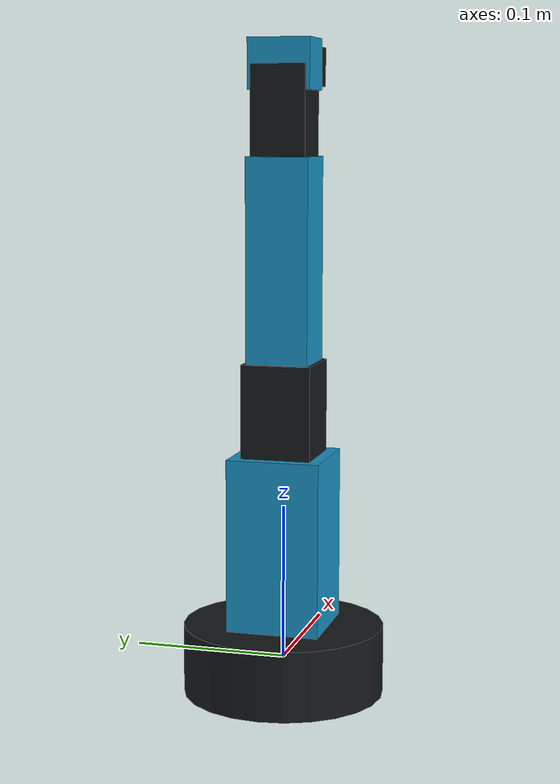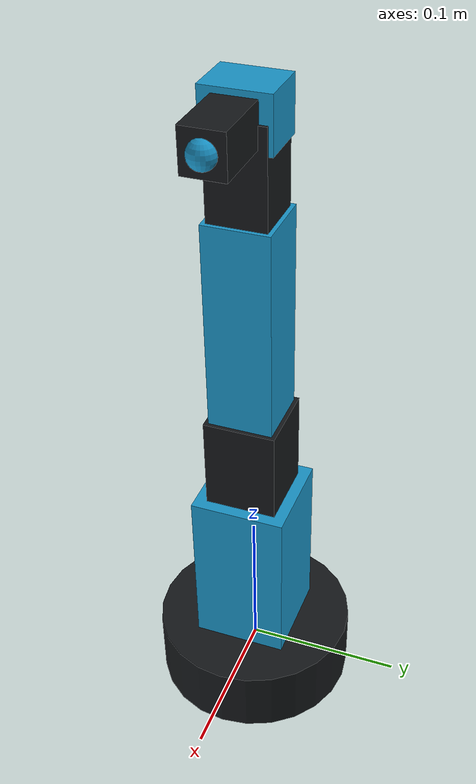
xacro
<?xml version="1.0"?>
<robot xmlns:xacro="http://www.ros.org/wiki/xacro" name="jonny5">
  <!-- ros2_control block (off by default: the SPI driver node path does not use it). -->
  <xacro:arg name="ros2_control" default="false" />
  <xacro:arg name="mock_hardware" default="true" />
  <xacro:arg name="spi_device" default="/dev/spidev0.0" />
  <xacro:arg name="transfer_len" default="64" />

  <xacro:property name="base_height" value="0.1123" />
  <xacro:property name="upper_arm" value="0.060" />
  <xacro:property name="elbow_to_pitch" value="0.186925" />
  <xacro:property name="yaw_to_pitch" value="0.057" />
  <xacro:property name="forearm" value="${elbow_to_pitch - yaw_to_pitch}" />
  <xacro:property name="tool_x" value="0.057" />

  <material name="jonny5_dark"><color rgba="0.08 0.09 0.10 1.0" /></material>
  <material name="jonny5_signal"><color rgba="0.10 0.58 0.78 1.0" /></material>

  <link name="world" />
  <joint name="world_to_base" type="fixed">
    <parent link="world" />
    <child link="base_link" />
    <origin xyz="0 0 0" rpy="0 0 0" />
  </joint>

  <link name="base_link">
    <visual><geometry><cylinder radius="0.065" length="0.045" /></geometry><material name="jonny5_dark" /></visual>
    <collision><geometry><cylinder radius="0.065" length="0.045" /></geometry></collision>
    <inertial><mass value="0.6" /><origin xyz="0 0 0.022" /><inertia ixx="0.001" ixy="0" ixz="0" iyy="0.001" iyz="0" izz="0.001" /></inertial>
  </link>

  <link name="shoulder_link">
    <visual><origin xyz="0 0 ${base_height/2}" /><geometry><box size="0.060 0.060 ${base_height}" /></geometry><material name="jonny5_signal" /></visual>
    <collision><origin xyz="0 0 ${base_height/2}" /><geometry><box size="0.060 0.060 ${base_height}" /></geometry></collision>
    <inertial><mass value="0.4" /><origin xyz="0 0 ${base_height/2}" /><inertia ixx="0.001" ixy="0" ixz="0" iyy="0.001" iyz="0" izz="0.001" /></inertial>
  </link>

  <joint name="base_joint" type="revolute">
    <parent link="base_link" />
    <child link="shoulder_link" />
    <origin xyz="0 0 0.022" rpy="0 0 0" />
    <axis xyz="0 0 1" />
    <limit lower="-0.785398" upper="0.610865" effort="5.0" velocity="2.0" />
  </joint>

  <link name="upper_arm_link">
    <visual><origin xyz="0 0 ${upper_arm/2}" /><geometry><box size="0.045 0.045 ${upper_arm}" /></geometry><material name="jonny5_dark" /></visual>
    <collision><origin xyz="0 0 ${upper_arm/2}" /><geometry><box size="0.045 0.045 ${upper_arm}" /></geometry></collision>
    <inertial><mass value="0.35" /><origin xyz="0 0 ${upper_arm/2}" /><inertia ixx="0.001" ixy="0" ixz="0" iyy="0.001" iyz="0" izz="0.001" /></inertial>
  </link>

  <joint name="shoulder_joint" type="revolute">
    <parent link="shoulder_link" />
    <child link="upper_arm_link" />
    <origin xyz="0 0 ${base_height}" rpy="0 0 0" />
    <axis xyz="0 1 0" />
    <!-- Dashboard 30..145 phys -> -57..+58 deg. -->
    <limit lower="-0.994838" upper="0.959931" effort="5.0" velocity="1.5" />
  </joint>

  <link name="forearm_link">
    <visual><origin xyz="0 0 ${forearm/2}" /><geometry><box size="0.040 0.040 ${forearm}" /></geometry><material name="jonny5_signal" /></visual>
    <collision><origin xyz="0 0 ${forearm/2}" /><geometry><box size="0.040 0.040 ${forearm}" /></geometry></collision>
    <inertial><mass value="0.3" /><origin xyz="0 0 ${forearm/2}" /><inertia ixx="0.001" ixy="0" ixz="0" iyy="0.001" iyz="0" izz="0.001" /></inertial>
  </link>

  <joint name="elbow_joint" type="revolute">
    <parent link="upper_arm_link" />
    <child link="forearm_link" />
    <origin xyz="0 0 ${upper_arm}" rpy="0 0 0" />
    <axis xyz="0 1 0" />
    <!-- Dashboard 30..145 phys -> -63..+52 deg. -->
    <limit lower="-1.047198" upper="0.907571" effort="5.0" velocity="1.5" />
  </joint>

  <link name="wrist_yaw_link"><visual><origin xyz="0 0 ${yaw_to_pitch/2}" /><geometry><box size="0.035 0.035 ${yaw_to_pitch}" /></geometry><material name="jonny5_dark" /></visual></link>
  <joint name="wrist_yaw_joint" type="revolute">
    <parent link="forearm_link" />
    <child link="wrist_yaw_link" />
    <origin xyz="0 0 ${forearm}" rpy="0 0 0" />
    <axis xyz="0 0 1" />
    <!-- Dashboard 45..135 phys -> -50..+40 deg. -->
    <limit lower="-0.785398" upper="0.698132" effort="2.0" velocity="1.5" />
  </joint>

  <link name="wrist_pitch_link"><visual><geometry><box size="0.032 0.040 0.032" /></geometry><material name="jonny5_signal" /></visual></link>
  <joint name="wrist_pitch_joint" type="revolute">
    <parent link="wrist_yaw_link" />
    <child link="wrist_pitch_link" />
    <origin xyz="0 0 ${yaw_to_pitch}" rpy="0 0 0" />
    <axis xyz="0 1 0" />
    <!-- Dashboard 35..120 phys (offset 90, dir -1) -> -30..+55 deg; firmware default
         45..135 -> -45..+45. Intersection: -30..+45 (PARK uses +40, tip down). -->
    <limit lower="-0.523599" upper="0.785398" effort="2.0" velocity="1.5" />
  </joint>

  <link name="wrist_roll_link"><visual><origin xyz="${tool_x/2} 0 0" /><geometry><box size="${tool_x} 0.025 0.025" /></geometry><material name="jonny5_dark" /></visual></link>
  <joint name="wrist_roll_joint" type="revolute">
    <parent link="wrist_pitch_link" />
    <child link="wrist_roll_link" />
    <!-- Roll axis (x) passes through the pitch point: no offset. -->
    <origin xyz="0 0 0" rpy="0 0 0" />
    <axis xyz="1 0 0" />
    <!-- Dashboard and firmware 45..135 phys (offset 95) -> -50..+40 deg. -->
    <limit lower="-0.785398" upper="0.698132" effort="2.0" velocity="1.5" />
  </joint>

  <link name="ee_link"><visual><geometry><sphere radius="0.008" /></geometry><material name="jonny5_signal" /></visual></link>
  <joint name="tool_joint" type="fixed">
    <parent link="wrist_roll_link" />
    <child link="ee_link" />
    <origin xyz="${tool_x} 0 0" rpy="0 0 0" />
  </joint>

  <link name="imu_link" />
  <joint name="imu_joint" type="fixed">
    <parent link="ee_link" />
    <child link="imu_link" />
    <origin xyz="0.030 0 0.020" rpy="0 0 0" />
  </joint>

  <link name="left_camera_link" />
  <joint name="left_camera_joint" type="fixed">
    <parent link="ee_link" />
    <child link="left_camera_link" />
    <origin xyz="0.045 0.032 0" rpy="0 0 0" />
  </joint>

  <link name="right_camera_link" />
  <joint name="right_camera_joint" type="fixed">
    <parent link="ee_link" />
    <child link="right_camera_link" />
    <origin xyz="0.045 -0.032 0" rpy="0 0 0" />
  </joint>

  <xacro:if value="$(arg ros2_control)">
    <xacro:include filename="jonny5.ros2_control.xacro" />
    <xacro:jonny5_ros2_control mock_hardware="$(arg mock_hardware)"
                               spi_device="$(arg spi_device)"
                               transfer_len="$(arg transfer_len)" />
  </xacro:if>
</robot>
